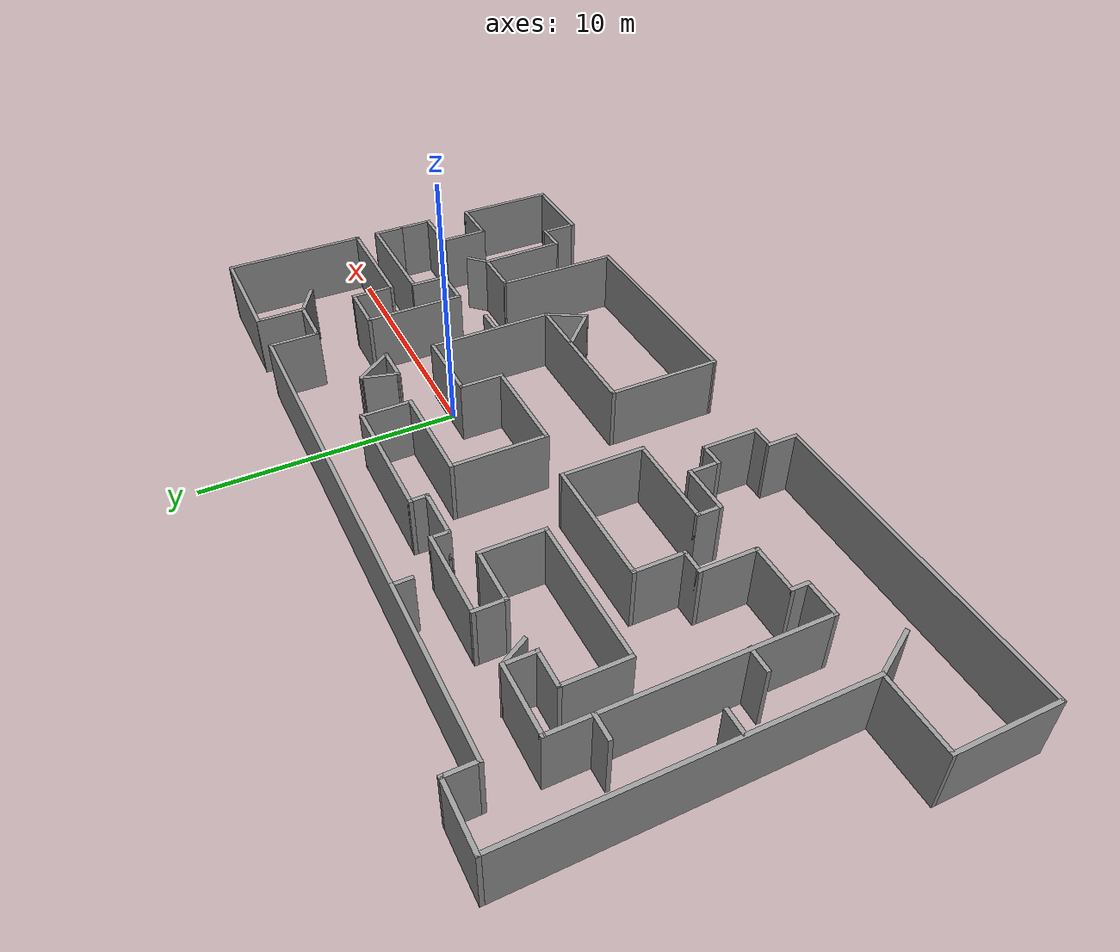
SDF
<?xml version='1.0'?>
<sdf version='1.7'>
  <model name='FBE5'>
    <pose>-5.50061 -1.24211 0 0 -0 0</pose>
    <link name='Wall_0'>
      <collision name='Wall_0_Collision'>
        <geometry>
          <box>
            <size>20.5 0.15 2.5</size>
          </box>
        </geometry>
        <pose>0 0 1.25 0 -0 0</pose>
      </collision>
      <visual name='Wall_0_Visual'>
        <pose>0 0 1.25 0 -0 0</pose>
        <geometry>
          <box>
            <size>20.5 0.15 2.5</size>
          </box>
        </geometry>
        <material>
          <script>
            <uri>file://media/materials/scripts/gazebo.material</uri>
            <name>Gazebo/Grey</name>
          </script>
          <ambient>1 1 1 1</ambient>
        </material>
        <meta>
          <layer>0</layer>
        </meta>
      </visual>
      <pose>-0.484704 7 0 0 -0 0</pose>
    </link>
    <link name='Wall_10'>
      <collision name='Wall_10_Collision'>
        <geometry>
          <box>
            <size>1 0.15 2.5</size>
          </box>
        </geometry>
        <pose>0 0 1.25 0 -0 0</pose>
      </collision>
      <visual name='Wall_10_Visual'>
        <pose>0 0 1.25 0 -0 0</pose>
        <geometry>
          <box>
            <size>1 0.15 2.5</size>
          </box>
        </geometry>
        <material>
          <script>
            <uri>file://media/materials/scripts/gazebo.material</uri>
            <name>Gazebo/Grey</name>
          </script>
          <ambient>1 1 1 1</ambient>
        </material>
        <meta>
          <layer>0</layer>
        </meta>
      </visual>
      <pose>-3.11529 -7 0 0 -0 0</pose>
    </link>
    <link name='Wall_11'>
      <collision name='Wall_11_Collision'>
        <geometry>
          <box>
            <size>2.25 0.15 2.5</size>
          </box>
        </geometry>
        <pose>0 0 1.25 0 -0 0</pose>
      </collision>
      <visual name='Wall_11_Visual'>
        <pose>0 0 1.25 0 -0 0</pose>
        <geometry>
          <box>
            <size>2.25 0.15 2.5</size>
          </box>
        </geometry>
        <material>
          <script>
            <uri>file://media/materials/scripts/gazebo.material</uri>
            <name>Gazebo/Grey</name>
          </script>
          <ambient>1 1 1 1</ambient>
        </material>
        <meta>
          <layer>0</layer>
        </meta>
      </visual>
      <pose>-2.69029 -5.95 0 0 -0 1.5708</pose>
    </link>
    <link name='Wall_12'>
      <collision name='Wall_12_Collision'>
        <geometry>
          <box>
            <size>1 0.15 2.5</size>
          </box>
        </geometry>
        <pose>0 0 1.25 0 -0 0</pose>
      </collision>
      <visual name='Wall_12_Visual'>
        <pose>0 0 1.25 0 -0 0</pose>
        <geometry>
          <box>
            <size>1 0.15 2.5</size>
          </box>
        </geometry>
        <material>
          <script>
            <uri>file://media/materials/scripts/gazebo.material</uri>
            <name>Gazebo/Grey</name>
          </script>
          <ambient>1 1 1 1</ambient>
        </material>
        <meta>
          <layer>0</layer>
        </meta>
      </visual>
      <pose>-3.11529 -4.9 0 0 -0 3.14159</pose>
    </link>
    <link name='Wall_13'>
      <collision name='Wall_13_Collision'>
        <geometry>
          <box>
            <size>1.25 0.15 2.5</size>
          </box>
        </geometry>
        <pose>0 0 1.25 0 -0 0</pose>
      </collision>
      <visual name='Wall_13_Visual'>
        <pose>0 0 1.25 0 -0 0</pose>
        <geometry>
          <box>
            <size>1.25 0.15 2.5</size>
          </box>
        </geometry>
        <material>
          <script>
            <uri>file://media/materials/scripts/gazebo.material</uri>
            <name>Gazebo/Grey</name>
          </script>
          <ambient>1 1 1 1</ambient>
        </material>
        <meta>
          <layer>0</layer>
        </meta>
      </visual>
      <pose>-3.54029 -4.35 0 0 -0 1.5708</pose>
    </link>
    <link name='Wall_14'>
      <collision name='Wall_14_Collision'>
        <geometry>
          <box>
            <size>2 0.15 2.5</size>
          </box>
        </geometry>
        <pose>0 0 1.25 0 -0 0</pose>
      </collision>
      <visual name='Wall_14_Visual'>
        <pose>0 0 1.25 0 -0 0</pose>
        <geometry>
          <box>
            <size>2 0.15 2.5</size>
          </box>
        </geometry>
        <material>
          <script>
            <uri>file://media/materials/scripts/gazebo.material</uri>
            <name>Gazebo/Grey</name>
          </script>
          <ambient>1 1 1 1</ambient>
        </material>
        <meta>
          <layer>0</layer>
        </meta>
      </visual>
      <pose>-4.4653 -3.8 0 0 -0 3.14159</pose>
    </link>
    <link name='Wall_15'>
      <collision name='Wall_15_Collision'>
        <geometry>
          <box>
            <size>1 0.15 2.5</size>
          </box>
        </geometry>
        <pose>0 0 1.25 0 -0 0</pose>
      </collision>
      <visual name='Wall_15_Visual'>
        <pose>0 0 1.25 0 -0 0</pose>
        <geometry>
          <box>
            <size>1 0.15 2.5</size>
          </box>
        </geometry>
        <material>
          <script>
            <uri>file://media/materials/scripts/gazebo.material</uri>
            <name>Gazebo/Grey</name>
          </script>
          <ambient>1 1 1 1</ambient>
        </material>
        <meta>
          <layer>0</layer>
        </meta>
      </visual>
      <pose>-5.3903 -3.375 0 0 -0 1.5708</pose>
    </link>
    <link name='Wall_16'>
      <collision name='Wall_16_Collision'>
        <geometry>
          <box>
            <size>3.75 0.15 2.5</size>
          </box>
        </geometry>
        <pose>0 0 1.25 0 -0 0</pose>
      </collision>
      <visual name='Wall_16_Visual'>
        <pose>0 0 1.25 0 -0 0</pose>
        <geometry>
          <box>
            <size>3.75 0.15 2.5</size>
          </box>
        </geometry>
        <material>
          <script>
            <uri>file://media/materials/scripts/gazebo.material</uri>
            <name>Gazebo/Grey</name>
          </script>
          <ambient>1 1 1 1</ambient>
        </material>
        <meta>
          <layer>0</layer>
        </meta>
      </visual>
      <pose>-3.59029 -2.95 0 0 -0 0</pose>
    </link>
    <link name='Wall_17'>
      <collision name='Wall_17_Collision'>
        <geometry>
          <box>
            <size>3.25 0.15 2.5</size>
          </box>
        </geometry>
        <pose>0 0 1.25 0 -0 0</pose>
      </collision>
      <visual name='Wall_17_Visual'>
        <pose>0 0 1.25 0 -0 0</pose>
        <geometry>
          <box>
            <size>3.25 0.15 2.5</size>
          </box>
        </geometry>
        <material>
          <script>
            <uri>file://media/materials/scripts/gazebo.material</uri>
            <name>Gazebo/Grey</name>
          </script>
          <ambient>1 1 1 1</ambient>
        </material>
        <meta>
          <layer>0</layer>
        </meta>
      </visual>
      <pose>-1.79029 -1.4 0 0 -0 1.5708</pose>
    </link>
    <link name='Wall_18'>
      <collision name='Wall_18_Collision'>
        <geometry>
          <box>
            <size>5 0.15 2.5</size>
          </box>
        </geometry>
        <pose>0 0 1.25 0 -0 0</pose>
      </collision>
      <visual name='Wall_18_Visual'>
        <pose>0 0 1.25 0 -0 0</pose>
        <geometry>
          <box>
            <size>5 0.15 2.5</size>
          </box>
        </geometry>
        <material>
          <script>
            <uri>file://media/materials/scripts/gazebo.material</uri>
            <name>Gazebo/Grey</name>
          </script>
          <ambient>1 1 1 1</ambient>
        </material>
        <meta>
          <layer>0</layer>
        </meta>
      </visual>
      <pose>-4.2153 0.15 0 0 -0 3.14159</pose>
    </link>
    <link name='Wall_19'>
      <collision name='Wall_19_Collision'>
        <geometry>
          <box>
            <size>2 0.15 2.5</size>
          </box>
        </geometry>
        <pose>0 0 1.25 0 -0 0</pose>
      </collision>
      <visual name='Wall_19_Visual'>
        <pose>0 0 1.25 0 -0 0</pose>
        <geometry>
          <box>
            <size>2 0.15 2.5</size>
          </box>
        </geometry>
        <material>
          <script>
            <uri>file://media/materials/scripts/gazebo.material</uri>
            <name>Gazebo/Grey</name>
          </script>
          <ambient>1 1 1 1</ambient>
        </material>
        <meta>
          <layer>0</layer>
        </meta>
      </visual>
      <pose>-6.6403 -0.775 0 0 -0 -1.5708</pose>
    </link>
    <link name='Wall_2'>
      <collision name='Wall_2_Collision'>
        <geometry>
          <box>
            <size>1.25 0.15 2.5</size>
          </box>
        </geometry>
        <pose>0 0 1.25 0 -0 0</pose>
      </collision>
      <visual name='Wall_2_Visual'>
        <pose>0 0 1.25 0 -0 0</pose>
        <geometry>
          <box>
            <size>1.25 0.15 2.5</size>
          </box>
        </geometry>
        <material>
          <script>
            <uri>file://media/materials/scripts/gazebo.material</uri>
            <name>Gazebo/Grey</name>
          </script>
          <ambient>1 1 1 1</ambient>
        </material>
        <meta>
          <layer>0</layer>
        </meta>
      </visual>
      <pose>-10.6597 7.55 0 0 -0 1.5708</pose>
    </link>
    <link name='Wall_20'>
      <collision name='Wall_20_Collision'>
        <geometry>
          <box>
            <size>1 0.15 2.5</size>
          </box>
        </geometry>
        <pose>0 0 1.25 0 -0 0</pose>
      </collision>
      <visual name='Wall_20_Visual'>
        <pose>0 0 1.25 0 -0 0</pose>
        <geometry>
          <box>
            <size>1 0.15 2.5</size>
          </box>
        </geometry>
        <material>
          <script>
            <uri>file://media/materials/scripts/gazebo.material</uri>
            <name>Gazebo/Grey</name>
          </script>
          <ambient>1 1 1 1</ambient>
        </material>
        <meta>
          <layer>0</layer>
        </meta>
      </visual>
      <pose>-7.06529 -1.7 0 0 -0 3.14159</pose>
    </link>
    <link name='Wall_21'>
      <collision name='Wall_21_Collision'>
        <geometry>
          <box>
            <size>2.25 0.15 2.5</size>
          </box>
        </geometry>
        <pose>0 0 1.25 0 -0 0</pose>
      </collision>
      <visual name='Wall_21_Visual'>
        <pose>0 0 1.25 0 -0 0</pose>
        <geometry>
          <box>
            <size>2.25 0.15 2.5</size>
          </box>
        </geometry>
        <material>
          <script>
            <uri>file://media/materials/scripts/gazebo.material</uri>
            <name>Gazebo/Grey</name>
          </script>
          <ambient>1 1 1 1</ambient>
        </material>
        <meta>
          <layer>0</layer>
        </meta>
      </visual>
      <pose>-7.49029 -2.75 0 0 -0 -1.5708</pose>
    </link>
    <link name='Wall_22'>
      <collision name='Wall_22_Collision'>
        <geometry>
          <box>
            <size>2 0.15 2.5</size>
          </box>
        </geometry>
        <pose>0 0 1.25 0 -0 0</pose>
      </collision>
      <visual name='Wall_22_Visual'>
        <pose>0 0 1.25 0 -0 0</pose>
        <geometry>
          <box>
            <size>2 0.15 2.5</size>
          </box>
        </geometry>
        <material>
          <script>
            <uri>file://media/materials/scripts/gazebo.material</uri>
            <name>Gazebo/Grey</name>
          </script>
          <ambient>1 1 1 1</ambient>
        </material>
        <meta>
          <layer>0</layer>
        </meta>
      </visual>
      <pose>-8.4153 -3.8 0 0 -0 3.14159</pose>
    </link>
    <link name='Wall_23'>
      <collision name='Wall_23_Collision'>
        <geometry>
          <box>
            <size>0.75 0.15 2.5</size>
          </box>
        </geometry>
        <pose>0 0 1.25 0 -0 0</pose>
      </collision>
      <visual name='Wall_23_Visual'>
        <pose>0 0 1.25 0 -0 0</pose>
        <geometry>
          <box>
            <size>0.75 0.15 2.5</size>
          </box>
        </geometry>
        <material>
          <script>
            <uri>file://media/materials/scripts/gazebo.material</uri>
            <name>Gazebo/Grey</name>
          </script>
          <ambient>1 1 1 1</ambient>
        </material>
        <meta>
          <layer>0</layer>
        </meta>
      </visual>
      <pose>-9.34029 -4.1 0 0 -0 -1.5708</pose>
    </link>
    <link name='Wall_24'>
      <collision name='Wall_24_Collision'>
        <geometry>
          <box>
            <size>1.5 0.15 2.5</size>
          </box>
        </geometry>
        <pose>0 0 1.25 0 -0 0</pose>
      </collision>
      <visual name='Wall_24_Visual'>
        <pose>0 0 1.25 0 -0 0</pose>
        <geometry>
          <box>
            <size>1.5 0.15 2.5</size>
          </box>
        </geometry>
        <material>
          <script>
            <uri>file://media/materials/scripts/gazebo.material</uri>
            <name>Gazebo/Grey</name>
          </script>
          <ambient>1 1 1 1</ambient>
        </material>
        <meta>
          <layer>0</layer>
        </meta>
      </visual>
      <pose>-10.0153 -4.4 0 0 -0 3.14159</pose>
    </link>
    <link name='Wall_25'>
      <collision name='Wall_25_Collision'>
        <geometry>
          <box>
            <size>9.75 0.15 2.5</size>
          </box>
        </geometry>
        <pose>0 0 1.25 0 -0 0</pose>
      </collision>
      <visual name='Wall_25_Visual'>
        <pose>0 0 1.25 0 -0 0</pose>
        <geometry>
          <box>
            <size>9.75 0.15 2.5</size>
          </box>
        </geometry>
        <material>
          <script>
            <uri>file://media/materials/scripts/gazebo.material</uri>
            <name>Gazebo/Grey</name>
          </script>
          <ambient>1 1 1 1</ambient>
        </material>
        <meta>
          <layer>0</layer>
        </meta>
      </visual>
      <pose>-10.6903 0.4 0 0 -0 1.5708</pose>
    </link>
    <link name='Wall_26'>
      <collision name='Wall_26_Collision'>
        <geometry>
          <box>
            <size>2.75 0.15 2.5</size>
          </box>
        </geometry>
        <pose>0 0 1.25 0 -0 0</pose>
      </collision>
      <visual name='Wall_26_Visual'>
        <pose>0 0 1.25 0 -0 0</pose>
        <geometry>
          <box>
            <size>2.75 0.15 2.5</size>
          </box>
        </geometry>
        <material>
          <script>
            <uri>file://media/materials/scripts/gazebo.material</uri>
            <name>Gazebo/Grey</name>
          </script>
          <ambient>1 1 1 1</ambient>
        </material>
        <meta>
          <layer>0</layer>
        </meta>
      </visual>
      <pose>-9.3903 5.2 0 0 -0 0</pose>
    </link>
    <link name='Wall_27'>
      <collision name='Wall_27_Collision'>
        <geometry>
          <box>
            <size>1.25 0.15 2.5</size>
          </box>
        </geometry>
        <pose>0 0 1.25 0 -0 0</pose>
      </collision>
      <visual name='Wall_27_Visual'>
        <pose>0 0 1.25 0 -0 0</pose>
        <geometry>
          <box>
            <size>1.25 0.15 2.5</size>
          </box>
        </geometry>
        <material>
          <script>
            <uri>file://media/materials/scripts/gazebo.material</uri>
            <name>Gazebo/Grey</name>
          </script>
          <ambient>1 1 1 1</ambient>
        </material>
        <meta>
          <layer>0</layer>
        </meta>
      </visual>
      <pose>-8.09029 4.65 0 0 -0 -1.5708</pose>
    </link>
    <link name='Wall_28'>
      <collision name='Wall_28_Collision'>
        <geometry>
          <box>
            <size>1.5 0.15 2.5</size>
          </box>
        </geometry>
        <pose>0 0 1.25 0 -0 0</pose>
      </collision>
      <visual name='Wall_28_Visual'>
        <pose>0 0 1.25 0 -0 0</pose>
        <geometry>
          <box>
            <size>1.5 0.15 2.5</size>
          </box>
        </geometry>
        <material>
          <script>
            <uri>file://media/materials/scripts/gazebo.material</uri>
            <name>Gazebo/Grey</name>
          </script>
          <ambient>1 1 1 1</ambient>
        </material>
        <meta>
          <layer>0</layer>
        </meta>
      </visual>
      <pose>-8.7653 4.1 0 0 -0 3.14159</pose>
    </link>
    <link name='Wall_29'>
      <collision name='Wall_29_Collision'>
        <geometry>
          <box>
            <size>2.5 0.15 2.5</size>
          </box>
        </geometry>
        <pose>0 0 1.25 0 -0 0</pose>
      </collision>
      <visual name='Wall_29_Visual'>
        <pose>0 0 1.25 0 -0 0</pose>
        <geometry>
          <box>
            <size>2.5 0.15 2.5</size>
          </box>
        </geometry>
        <material>
          <script>
            <uri>file://media/materials/scripts/gazebo.material</uri>
            <name>Gazebo/Grey</name>
          </script>
          <ambient>1 1 1 1</ambient>
        </material>
        <meta>
          <layer>0</layer>
        </meta>
      </visual>
      <pose>-9.4403 2.925 0 0 -0 -1.5708</pose>
    </link>
    <link name='Wall_3'>
      <collision name='Wall_3_Collision'>
        <geometry>
          <box>
            <size>2.53059 0.15 2.5</size>
          </box>
        </geometry>
        <pose>0 0 1.25 0 -0 0</pose>
      </collision>
      <visual name='Wall_3_Visual'>
        <pose>0 0 1.25 0 -0 0</pose>
        <geometry>
          <box>
            <size>2.53059 0.15 2.5</size>
          </box>
        </geometry>
        <material>
          <script>
            <uri>file://media/materials/scripts/gazebo.material</uri>
            <name>Gazebo/Grey</name>
          </script>
          <ambient>1 1 1 1</ambient>
        </material>
        <meta>
          <layer>0</layer>
        </meta>
      </visual>
      <pose>-11.85 8.1 0 0 -0 3.14159</pose>
    </link>
    <link name='Wall_30'>
      <collision name='Wall_30_Collision'>
        <geometry>
          <box>
            <size>5.75 0.15 2.5</size>
          </box>
        </geometry>
        <pose>0 0 1.25 0 -0 0</pose>
      </collision>
      <visual name='Wall_30_Visual'>
        <pose>0 0 1.25 0 -0 0</pose>
        <geometry>
          <box>
            <size>5.75 0.15 2.5</size>
          </box>
        </geometry>
        <material>
          <script>
            <uri>file://media/materials/scripts/gazebo.material</uri>
            <name>Gazebo/Grey</name>
          </script>
          <ambient>1 1 1 1</ambient>
        </material>
        <meta>
          <layer>0</layer>
        </meta>
      </visual>
      <pose>-6.6403 1.75 0 0 -0 0</pose>
    </link>
    <link name='Wall_31'>
      <collision name='Wall_31_Collision'>
        <geometry>
          <box>
            <size>2.5 0.15 2.5</size>
          </box>
        </geometry>
        <pose>0 0 1.25 0 -0 0</pose>
      </collision>
      <visual name='Wall_31_Visual'>
        <pose>0 0 1.25 0 -0 0</pose>
        <geometry>
          <box>
            <size>2.5 0.15 2.5</size>
          </box>
        </geometry>
        <material>
          <script>
            <uri>file://media/materials/scripts/gazebo.material</uri>
            <name>Gazebo/Grey</name>
          </script>
          <ambient>1 1 1 1</ambient>
        </material>
        <meta>
          <layer>0</layer>
        </meta>
      </visual>
      <pose>-3.84029 2.925 0 0 -0 1.5708</pose>
    </link>
    <link name='Wall_32'>
      <collision name='Wall_32_Collision'>
        <geometry>
          <box>
            <size>2.25 0.15 2.5</size>
          </box>
        </geometry>
        <pose>0 0 1.25 0 -0 0</pose>
      </collision>
      <visual name='Wall_32_Visual'>
        <pose>0 0 1.25 0 -0 0</pose>
        <geometry>
          <box>
            <size>2.25 0.15 2.5</size>
          </box>
        </geometry>
        <material>
          <script>
            <uri>file://media/materials/scripts/gazebo.material</uri>
            <name>Gazebo/Grey</name>
          </script>
          <ambient>1 1 1 1</ambient>
        </material>
        <meta>
          <layer>0</layer>
        </meta>
      </visual>
      <pose>-4.8903 4.1 0 0 -0 3.14159</pose>
    </link>
    <link name='Wall_33'>
      <collision name='Wall_33_Collision'>
        <geometry>
          <box>
            <size>1.25 0.15 2.5</size>
          </box>
        </geometry>
        <pose>0 0 1.25 0 -0 0</pose>
      </collision>
      <visual name='Wall_33_Visual'>
        <pose>0 0 1.25 0 -0 0</pose>
        <geometry>
          <box>
            <size>1.25 0.15 2.5</size>
          </box>
        </geometry>
        <material>
          <script>
            <uri>file://media/materials/scripts/gazebo.material</uri>
            <name>Gazebo/Grey</name>
          </script>
          <ambient>1 1 1 1</ambient>
        </material>
        <meta>
          <layer>0</layer>
        </meta>
      </visual>
      <pose>-5.94029 4.65 0 0 -0 1.5708</pose>
    </link>
    <link name='Wall_34'>
      <collision name='Wall_34_Collision'>
        <geometry>
          <box>
            <size>3.5 0.15 2.5</size>
          </box>
        </geometry>
        <pose>0 0 1.25 0 -0 0</pose>
      </collision>
      <visual name='Wall_34_Visual'>
        <pose>0 0 1.25 0 -0 0</pose>
        <geometry>
          <box>
            <size>3.5 0.15 2.5</size>
          </box>
        </geometry>
        <material>
          <script>
            <uri>file://media/materials/scripts/gazebo.material</uri>
            <name>Gazebo/Grey</name>
          </script>
          <ambient>1 1 1 1</ambient>
        </material>
        <meta>
          <layer>0</layer>
        </meta>
      </visual>
      <pose>-4.2653 5.2 0 0 -0 0</pose>
    </link>
    <link name='Wall_35'>
      <collision name='Wall_35_Collision'>
        <geometry>
          <box>
            <size>0.75 0.15 2.5</size>
          </box>
        </geometry>
        <pose>0 0 1.25 0 -0 0</pose>
      </collision>
      <visual name='Wall_35_Visual'>
        <pose>0 0 1.25 0 -0 0</pose>
        <geometry>
          <box>
            <size>0.75 0.15 2.5</size>
          </box>
        </geometry>
        <material>
          <script>
            <uri>file://media/materials/scripts/gazebo.material</uri>
            <name>Gazebo/Grey</name>
          </script>
          <ambient>1 1 1 1</ambient>
        </material>
        <meta>
          <layer>0</layer>
        </meta>
      </visual>
      <pose>-2.59029 4.9 0 0 -0 -1.5708</pose>
    </link>
    <link name='Wall_36'>
      <collision name='Wall_36_Collision'>
        <geometry>
          <box>
            <size>2 0.15 2.5</size>
          </box>
        </geometry>
        <pose>0 0 1.25 0 -0 0</pose>
      </collision>
      <visual name='Wall_36_Visual'>
        <pose>0 0 1.25 0 -0 0</pose>
        <geometry>
          <box>
            <size>2 0.15 2.5</size>
          </box>
        </geometry>
        <material>
          <script>
            <uri>file://media/materials/scripts/gazebo.material</uri>
            <name>Gazebo/Grey</name>
          </script>
          <ambient>1 1 1 1</ambient>
        </material>
        <meta>
          <layer>0</layer>
        </meta>
      </visual>
      <pose>-1.66529 4.6 0 0 -0 0</pose>
    </link>
    <link name='Wall_37'>
      <collision name='Wall_37_Collision'>
        <geometry>
          <box>
            <size>0.75 0.15 2.5</size>
          </box>
        </geometry>
        <pose>0 0 1.25 0 -0 0</pose>
      </collision>
      <visual name='Wall_37_Visual'>
        <pose>0 0 1.25 0 -0 0</pose>
        <geometry>
          <box>
            <size>0.75 0.15 2.5</size>
          </box>
        </geometry>
        <material>
          <script>
            <uri>file://media/materials/scripts/gazebo.material</uri>
            <name>Gazebo/Grey</name>
          </script>
          <ambient>1 1 1 1</ambient>
        </material>
        <meta>
          <layer>0</layer>
        </meta>
      </visual>
      <pose>-0.740295 4.9 0 0 -0 1.5708</pose>
    </link>
    <link name='Wall_38'>
      <collision name='Wall_38_Collision'>
        <geometry>
          <box>
            <size>5 0.15 2.5</size>
          </box>
        </geometry>
        <pose>0 0 1.25 0 -0 0</pose>
      </collision>
      <visual name='Wall_38_Visual'>
        <pose>0 0 1.25 0 -0 0</pose>
        <geometry>
          <box>
            <size>5 0.15 2.5</size>
          </box>
        </geometry>
        <material>
          <script>
            <uri>file://media/materials/scripts/gazebo.material</uri>
            <name>Gazebo/Grey</name>
          </script>
          <ambient>1 1 1 1</ambient>
        </material>
        <meta>
          <layer>0</layer>
        </meta>
      </visual>
      <pose>1.6847 5.2 0 0 -0 0</pose>
    </link>
    <link name='Wall_39'>
      <collision name='Wall_39_Collision'>
        <geometry>
          <box>
            <size>2 0.15 2.5</size>
          </box>
        </geometry>
        <pose>0 0 1.25 0 -0 0</pose>
      </collision>
      <visual name='Wall_39_Visual'>
        <pose>0 0 1.25 0 -0 0</pose>
        <geometry>
          <box>
            <size>2 0.15 2.5</size>
          </box>
        </geometry>
        <material>
          <script>
            <uri>file://media/materials/scripts/gazebo.material</uri>
            <name>Gazebo/Grey</name>
          </script>
          <ambient>1 1 1 1</ambient>
        </material>
        <meta>
          <layer>0</layer>
        </meta>
      </visual>
      <pose>4.1097 4.275 0 0 -0 -1.5708</pose>
    </link>
    <link name='Wall_4'>
      <collision name='Wall_4_Collision'>
        <geometry>
          <box>
            <size>12.5 0.15 2.5</size>
          </box>
        </geometry>
        <pose>0 0 1.25 0 -0 0</pose>
      </collision>
      <visual name='Wall_4_Visual'>
        <pose>0 0 1.25 0 -0 0</pose>
        <geometry>
          <box>
            <size>12.5 0.15 2.5</size>
          </box>
        </geometry>
        <material>
          <script>
            <uri>file://media/materials/scripts/gazebo.material</uri>
            <name>Gazebo/Grey</name>
          </script>
          <ambient>1 1 1 1</ambient>
        </material>
        <meta>
          <layer>0</layer>
        </meta>
      </visual>
      <pose>-13.0403 1.925 0 0 -0 -1.5708</pose>
    </link>
    <link name='Wall_40'>
      <collision name='Wall_40_Collision'>
        <geometry>
          <box>
            <size>4 0.15 2.5</size>
          </box>
        </geometry>
        <pose>0 0 1.25 0 -0 0</pose>
      </collision>
      <visual name='Wall_40_Visual'>
        <pose>0 0 1.25 0 -0 0</pose>
        <geometry>
          <box>
            <size>4 0.15 2.5</size>
          </box>
        </geometry>
        <material>
          <script>
            <uri>file://media/materials/scripts/gazebo.material</uri>
            <name>Gazebo/Grey</name>
          </script>
          <ambient>1 1 1 1</ambient>
        </material>
        <meta>
          <layer>0</layer>
        </meta>
      </visual>
      <pose>2.18471 3.35 0 0 -0 3.14159</pose>
    </link>
    <link name='Wall_41'>
      <collision name='Wall_41_Collision'>
        <geometry>
          <box>
            <size>3.75 0.15 2.5</size>
          </box>
        </geometry>
        <pose>0 0 1.25 0 -0 0</pose>
      </collision>
      <visual name='Wall_41_Visual'>
        <pose>0 0 1.25 0 -0 0</pose>
        <geometry>
          <box>
            <size>3.75 0.15 2.5</size>
          </box>
        </geometry>
        <material>
          <script>
            <uri>file://media/materials/scripts/gazebo.material</uri>
            <name>Gazebo/Grey</name>
          </script>
          <ambient>1 1 1 1</ambient>
        </material>
        <meta>
          <layer>0</layer>
        </meta>
      </visual>
      <pose>0.259705 1.55 0 0 -0 -1.5708</pose>
    </link>
    <link name='Wall_42'>
      <collision name='Wall_42_Collision'>
        <geometry>
          <box>
            <size>4 0.15 2.5</size>
          </box>
        </geometry>
        <pose>0 0 1.25 0 -0 0</pose>
      </collision>
      <visual name='Wall_42_Visual'>
        <pose>0 0 1.25 0 -0 0</pose>
        <geometry>
          <box>
            <size>4 0.15 2.5</size>
          </box>
        </geometry>
        <material>
          <script>
            <uri>file://media/materials/scripts/gazebo.material</uri>
            <name>Gazebo/Grey</name>
          </script>
          <ambient>1 1 1 1</ambient>
        </material>
        <meta>
          <layer>0</layer>
        </meta>
      </visual>
      <pose>2.18471 -0.25 0 0 -0 0</pose>
    </link>
    <link name='Wall_43'>
      <collision name='Wall_43_Collision'>
        <geometry>
          <box>
            <size>1.75 0.15 2.5</size>
          </box>
        </geometry>
        <pose>0 0 1.25 0 -0 0</pose>
      </collision>
      <visual name='Wall_43_Visual'>
        <pose>0 0 1.25 0 -0 0</pose>
        <geometry>
          <box>
            <size>1.75 0.15 2.5</size>
          </box>
        </geometry>
        <material>
          <script>
            <uri>file://media/materials/scripts/gazebo.material</uri>
            <name>Gazebo/Grey</name>
          </script>
          <ambient>1 1 1 1</ambient>
        </material>
        <meta>
          <layer>0</layer>
        </meta>
      </visual>
      <pose>4.1097 0.55 0 0 -0 1.5708</pose>
    </link>
    <link name='Wall_44'>
      <collision name='Wall_44_Collision'>
        <geometry>
          <box>
            <size>3 0.15 2.5</size>
          </box>
        </geometry>
        <pose>0 0 1.25 0 -0 0</pose>
      </collision>
      <visual name='Wall_44_Visual'>
        <pose>0 0 1.25 0 -0 0</pose>
        <geometry>
          <box>
            <size>3 0.15 2.5</size>
          </box>
        </geometry>
        <material>
          <script>
            <uri>file://media/materials/scripts/gazebo.material</uri>
            <name>Gazebo/Grey</name>
          </script>
          <ambient>1 1 1 1</ambient>
        </material>
        <meta>
          <layer>0</layer>
        </meta>
      </visual>
      <pose>5.5347 1.35 0 0 -0 0</pose>
    </link>
    <link name='Wall_45'>
      <collision name='Wall_45_Collision'>
        <geometry>
          <box>
            <size>5 0.15 2.5</size>
          </box>
        </geometry>
        <pose>0 0 1.25 0 -0 0</pose>
      </collision>
      <visual name='Wall_45_Visual'>
        <pose>0 0 1.25 0 -0 0</pose>
        <geometry>
          <box>
            <size>5 0.15 2.5</size>
          </box>
        </geometry>
        <material>
          <script>
            <uri>file://media/materials/scripts/gazebo.material</uri>
            <name>Gazebo/Grey</name>
          </script>
          <ambient>1 1 1 1</ambient>
        </material>
        <meta>
          <layer>0</layer>
        </meta>
      </visual>
      <pose>6.9597 -1.075 0 0 -0 -1.5708</pose>
    </link>
    <link name='Wall_46'>
      <collision name='Wall_46_Collision'>
        <geometry>
          <box>
            <size>5.75 0.15 2.5</size>
          </box>
        </geometry>
        <pose>0 0 1.25 0 -0 0</pose>
      </collision>
      <visual name='Wall_46_Visual'>
        <pose>0 0 1.25 0 -0 0</pose>
        <geometry>
          <box>
            <size>5.75 0.15 2.5</size>
          </box>
        </geometry>
        <material>
          <script>
            <uri>file://media/materials/scripts/gazebo.material</uri>
            <name>Gazebo/Grey</name>
          </script>
          <ambient>1 1 1 1</ambient>
        </material>
        <meta>
          <layer>0</layer>
        </meta>
      </visual>
      <pose>4.1597 -3.5 0 0 -0 3.14159</pose>
    </link>
    <link name='Wall_47'>
      <collision name='Wall_47_Collision'>
        <geometry>
          <box>
            <size>4.5 0.15 2.5</size>
          </box>
        </geometry>
        <pose>0 0 1.25 0 -0 0</pose>
      </collision>
      <visual name='Wall_47_Visual'>
        <pose>0 0 1.25 0 -0 0</pose>
        <geometry>
          <box>
            <size>4.5 0.15 2.5</size>
          </box>
        </geometry>
        <material>
          <script>
            <uri>file://media/materials/scripts/gazebo.material</uri>
            <name>Gazebo/Grey</name>
          </script>
          <ambient>1 1 1 1</ambient>
        </material>
        <meta>
          <layer>0</layer>
        </meta>
      </visual>
      <pose>1.3597 -5.675 0 0 -0 -1.5708</pose>
    </link>
    <link name='Wall_48'>
      <collision name='Wall_48_Collision'>
        <geometry>
          <box>
            <size>8.52145 0.15 2.5</size>
          </box>
        </geometry>
        <pose>0 0 1.25 0 -0 0</pose>
      </collision>
      <visual name='Wall_48_Visual'>
        <pose>0 0 1.25 0 -0 0</pose>
        <geometry>
          <box>
            <size>8.52145 0.15 2.5</size>
          </box>
        </geometry>
        <material>
          <script>
            <uri>file://media/materials/scripts/gazebo.material</uri>
            <name>Gazebo/Grey</name>
          </script>
          <ambient>1 1 1 1</ambient>
        </material>
        <meta>
          <layer>0</layer>
        </meta>
      </visual>
      <pose>5.54536 -7.825 0 0 -0 0.005973</pose>
    </link>
    <link name='Wall_5'>
      <collision name='Wall_5_Collision'>
        <geometry>
          <box>
            <size>3 0.15 2.5</size>
          </box>
        </geometry>
        <pose>0 0 1.25 0 -0 0</pose>
      </collision>
      <visual name='Wall_5_Visual'>
        <pose>0 0 1.25 0 -0 0</pose>
        <geometry>
          <box>
            <size>3 0.15 2.5</size>
          </box>
        </geometry>
        <material>
          <script>
            <uri>file://media/materials/scripts/gazebo.material</uri>
            <name>Gazebo/Grey</name>
          </script>
          <ambient>1 1 1 1</ambient>
        </material>
        <meta>
          <layer>0</layer>
        </meta>
      </visual>
      <pose>-14.4653 -4.25 0 0 -0 3.14159</pose>
    </link>
    <link name='Wall_51'>
      <collision name='Wall_51_Collision'>
        <geometry>
          <box>
            <size>2 0.15 2.5</size>
          </box>
        </geometry>
        <pose>0 0 1.25 0 -0 0</pose>
      </collision>
      <visual name='Wall_51_Visual'>
        <pose>0 0 1.25 0 -0 0</pose>
        <geometry>
          <box>
            <size>2 0.15 2.5</size>
          </box>
        </geometry>
        <material>
          <script>
            <uri>file://media/materials/scripts/gazebo.material</uri>
            <name>Gazebo/Grey</name>
          </script>
          <ambient>1 1 1 1</ambient>
        </material>
        <meta>
          <layer>0</layer>
        </meta>
      </visual>
      <pose>9.6903 6.075 0 0 -0 -1.5708</pose>
    </link>
    <link name='Wall_52'>
      <collision name='Wall_52_Collision'>
        <geometry>
          <box>
            <size>2 0.15 2.5</size>
          </box>
        </geometry>
        <pose>0 0 1.25 0 -0 0</pose>
      </collision>
      <visual name='Wall_52_Visual'>
        <pose>0 0 1.25 0 -0 0</pose>
        <geometry>
          <box>
            <size>2 0.15 2.5</size>
          </box>
        </geometry>
        <material>
          <script>
            <uri>file://media/materials/scripts/gazebo.material</uri>
            <name>Gazebo/Grey</name>
          </script>
          <ambient>1 1 1 1</ambient>
        </material>
        <meta>
          <layer>0</layer>
        </meta>
      </visual>
      <pose>10.6153 5.15 0 0 -0 0</pose>
    </link>
    <link name='Wall_53'>
      <collision name='Wall_53_Collision'>
        <geometry>
          <box>
            <size>2 0.15 2.5</size>
          </box>
        </geometry>
        <pose>0 0 1.25 0 -0 0</pose>
      </collision>
      <visual name='Wall_53_Visual'>
        <pose>0 0 1.25 0 -0 0</pose>
        <geometry>
          <box>
            <size>2 0.15 2.5</size>
          </box>
        </geometry>
        <material>
          <script>
            <uri>file://media/materials/scripts/gazebo.material</uri>
            <name>Gazebo/Grey</name>
          </script>
          <ambient>1 1 1 1</ambient>
        </material>
        <meta>
          <layer>0</layer>
        </meta>
      </visual>
      <pose>11.5403 6.075 0 0 -0 1.5708</pose>
    </link>
    <link name='Wall_54'>
      <collision name='Wall_54_Collision'>
        <geometry>
          <box>
            <size>4.5 0.15 2.5</size>
          </box>
        </geometry>
        <pose>0 0 1.25 0 -0 0</pose>
      </collision>
      <visual name='Wall_54_Visual'>
        <pose>0 0 1.25 0 -0 0</pose>
        <geometry>
          <box>
            <size>4.5 0.15 2.5</size>
          </box>
        </geometry>
        <material>
          <script>
            <uri>file://media/materials/scripts/gazebo.material</uri>
            <name>Gazebo/Grey</name>
          </script>
          <ambient>1 1 1 1</ambient>
        </material>
        <meta>
          <layer>0</layer>
        </meta>
      </visual>
      <pose>13.7153 7 0 0 -0 0</pose>
    </link>
    <link name='Wall_55'>
      <collision name='Wall_55_Collision'>
        <geometry>
          <box>
            <size>5.75 0.15 2.5</size>
          </box>
        </geometry>
        <pose>0 0 1.25 0 -0 0</pose>
      </collision>
      <visual name='Wall_55_Visual'>
        <pose>0 0 1.25 0 -0 0</pose>
        <geometry>
          <box>
            <size>5.75 0.15 2.5</size>
          </box>
        </geometry>
        <material>
          <script>
            <uri>file://media/materials/scripts/gazebo.material</uri>
            <name>Gazebo/Grey</name>
          </script>
          <ambient>1 1 1 1</ambient>
        </material>
        <meta>
          <layer>0</layer>
        </meta>
      </visual>
      <pose>15.8903 4.2 0 0 -0 -1.5708</pose>
    </link>
    <link name='Wall_56'>
      <collision name='Wall_56_Collision'>
        <geometry>
          <box>
            <size>4.5 0.15 2.5</size>
          </box>
        </geometry>
        <pose>0 0 1.25 0 -0 0</pose>
      </collision>
      <visual name='Wall_56_Visual'>
        <pose>0 0 1.25 0 -0 0</pose>
        <geometry>
          <box>
            <size>4.5 0.15 2.5</size>
          </box>
        </geometry>
        <material>
          <script>
            <uri>file://media/materials/scripts/gazebo.material</uri>
            <name>Gazebo/Grey</name>
          </script>
          <ambient>1 1 1 1</ambient>
        </material>
        <meta>
          <layer>0</layer>
        </meta>
      </visual>
      <pose>13.7153 1.4 0 0 -0 3.14159</pose>
    </link>
    <link name='Wall_57'>
      <collision name='Wall_57_Collision'>
        <geometry>
          <box>
            <size>1.75 0.15 2.5</size>
          </box>
        </geometry>
        <pose>0 0 1.25 0 -0 0</pose>
      </collision>
      <visual name='Wall_57_Visual'>
        <pose>0 0 1.25 0 -0 0</pose>
        <geometry>
          <box>
            <size>1.75 0.15 2.5</size>
          </box>
        </geometry>
        <material>
          <script>
            <uri>file://media/materials/scripts/gazebo.material</uri>
            <name>Gazebo/Grey</name>
          </script>
          <ambient>1 1 1 1</ambient>
        </material>
        <meta>
          <layer>0</layer>
        </meta>
      </visual>
      <pose>11.5403 2.2 0 0 -0 1.5708</pose>
    </link>
    <link name='Wall_58'>
      <collision name='Wall_58_Collision'>
        <geometry>
          <box>
            <size>2 0.15 2.5</size>
          </box>
        </geometry>
        <pose>0 0 1.25 0 -0 0</pose>
      </collision>
      <visual name='Wall_58_Visual'>
        <pose>0 0 1.25 0 -0 0</pose>
        <geometry>
          <box>
            <size>2 0.15 2.5</size>
          </box>
        </geometry>
        <material>
          <script>
            <uri>file://media/materials/scripts/gazebo.material</uri>
            <name>Gazebo/Grey</name>
          </script>
          <ambient>1 1 1 1</ambient>
        </material>
        <meta>
          <layer>0</layer>
        </meta>
      </visual>
      <pose>10.6153 3 0 0 -0 3.14159</pose>
    </link>
    <link name='Wall_59'>
      <collision name='Wall_59_Collision'>
        <geometry>
          <box>
            <size>4 0.15 2.5</size>
          </box>
        </geometry>
        <pose>0 0 1.25 0 -0 0</pose>
      </collision>
      <visual name='Wall_59_Visual'>
        <pose>0 0 1.25 0 -0 0</pose>
        <geometry>
          <box>
            <size>4 0.15 2.5</size>
          </box>
        </geometry>
        <material>
          <script>
            <uri>file://media/materials/scripts/gazebo.material</uri>
            <name>Gazebo/Grey</name>
          </script>
          <ambient>1 1 1 1</ambient>
        </material>
        <meta>
          <layer>0</layer>
        </meta>
      </visual>
      <pose>9.6903 1.075 0 0 -0 -1.5708</pose>
    </link>
    <link name='Wall_60'>
      <collision name='Wall_60_Collision'>
        <geometry>
          <box>
            <size>1.75 0.15 2.5</size>
          </box>
        </geometry>
        <pose>0 0 1.25 0 -0 0</pose>
      </collision>
      <visual name='Wall_60_Visual'>
        <pose>0 0 1.25 0 -0 0</pose>
        <geometry>
          <box>
            <size>1.75 0.15 2.5</size>
          </box>
        </geometry>
        <material>
          <script>
            <uri>file://media/materials/scripts/gazebo.material</uri>
            <name>Gazebo/Grey</name>
          </script>
          <ambient>1 1 1 1</ambient>
        </material>
        <meta>
          <layer>0</layer>
        </meta>
      </visual>
      <pose>10.4903 -0.85 0 0 -0 0</pose>
    </link>
    <link name='Wall_61'>
      <collision name='Wall_61_Collision'>
        <geometry>
          <box>
            <size>1.5 0.15 2.5</size>
          </box>
        </geometry>
        <pose>0 0 1.25 0 -0 0</pose>
      </collision>
      <visual name='Wall_61_Visual'>
        <pose>0 0 1.25 0 -0 0</pose>
        <geometry>
          <box>
            <size>1.5 0.15 2.5</size>
          </box>
        </geometry>
        <material>
          <script>
            <uri>file://media/materials/scripts/gazebo.material</uri>
            <name>Gazebo/Grey</name>
          </script>
          <ambient>1 1 1 1</ambient>
        </material>
        <meta>
          <layer>0</layer>
        </meta>
      </visual>
      <pose>11.2903 -0.175 0 0 -0 1.5708</pose>
    </link>
    <link name='Wall_62'>
      <collision name='Wall_62_Collision'>
        <geometry>
          <box>
            <size>4.75 0.15 2.5</size>
          </box>
        </geometry>
        <pose>0 0 1.25 0 -0 0</pose>
      </collision>
      <visual name='Wall_62_Visual'>
        <pose>0 0 1.25 0 -0 0</pose>
        <geometry>
          <box>
            <size>4.75 0.15 2.5</size>
          </box>
        </geometry>
        <material>
          <script>
            <uri>file://media/materials/scripts/gazebo.material</uri>
            <name>Gazebo/Grey</name>
          </script>
          <ambient>1 1 1 1</ambient>
        </material>
        <meta>
          <layer>0</layer>
        </meta>
      </visual>
      <pose>13.5903 0.5 0 0 -0 0</pose>
    </link>
    <link name='Wall_63'>
      <collision name='Wall_63_Collision'>
        <geometry>
          <box>
            <size>1.25 0.15 2.5</size>
          </box>
        </geometry>
        <pose>0 0 1.25 0 -0 0</pose>
      </collision>
      <visual name='Wall_63_Visual'>
        <pose>0 0 1.25 0 -0 0</pose>
        <geometry>
          <box>
            <size>1.25 0.15 2.5</size>
          </box>
        </geometry>
        <material>
          <script>
            <uri>file://media/materials/scripts/gazebo.material</uri>
            <name>Gazebo/Grey</name>
          </script>
          <ambient>1 1 1 1</ambient>
        </material>
        <meta>
          <layer>0</layer>
        </meta>
      </visual>
      <pose>15.8903 -0.05 0 0 -0 -1.5708</pose>
    </link>
    <link name='Wall_64'>
      <collision name='Wall_64_Collision'>
        <geometry>
          <box>
            <size>1.5 0.15 2.5</size>
          </box>
        </geometry>
        <pose>0 0 1.25 0 -0 0</pose>
      </collision>
      <visual name='Wall_64_Visual'>
        <pose>0 0 1.25 0 -0 0</pose>
        <geometry>
          <box>
            <size>1.5 0.15 2.5</size>
          </box>
        </geometry>
        <material>
          <script>
            <uri>file://media/materials/scripts/gazebo.material</uri>
            <name>Gazebo/Grey</name>
          </script>
          <ambient>1 1 1 1</ambient>
        </material>
        <meta>
          <layer>0</layer>
        </meta>
      </visual>
      <pose>15.8903 -1.275 0 0 -0 -1.5708</pose>
    </link>
    <link name='Wall_65'>
      <collision name='Wall_65_Collision'>
        <geometry>
          <box>
            <size>2 0.15 2.5</size>
          </box>
        </geometry>
        <pose>0 0 1.25 0 -0 0</pose>
      </collision>
      <visual name='Wall_65_Visual'>
        <pose>0 0 1.25 0 -0 0</pose>
        <geometry>
          <box>
            <size>2 0.15 2.5</size>
          </box>
        </geometry>
        <material>
          <script>
            <uri>file://media/materials/scripts/gazebo.material</uri>
            <name>Gazebo/Grey</name>
          </script>
          <ambient>1 1 1 1</ambient>
        </material>
        <meta>
          <layer>0</layer>
        </meta>
      </visual>
      <pose>14.9653 -1.95 0 0 -0 3.14159</pose>
    </link>
    <link name='Wall_66'>
      <collision name='Wall_66_Collision'>
        <geometry>
          <box>
            <size>2 0.15 2.5</size>
          </box>
        </geometry>
        <pose>0 0 1.25 0 -0 0</pose>
      </collision>
      <visual name='Wall_66_Visual'>
        <pose>0 0 1.25 0 -0 0</pose>
        <geometry>
          <box>
            <size>2 0.15 2.5</size>
          </box>
        </geometry>
        <material>
          <script>
            <uri>file://media/materials/scripts/gazebo.material</uri>
            <name>Gazebo/Grey</name>
          </script>
          <ambient>1 1 1 1</ambient>
        </material>
        <meta>
          <layer>0</layer>
        </meta>
      </visual>
      <pose>14.0403 -2.875 0 0 -0 -1.5708</pose>
    </link>
    <link name='Wall_67'>
      <collision name='Wall_67_Collision'>
        <geometry>
          <box>
            <size>2 0.15 2.5</size>
          </box>
        </geometry>
        <pose>0 0 1.25 0 -0 0</pose>
      </collision>
      <visual name='Wall_67_Visual'>
        <pose>0 0 1.25 0 -0 0</pose>
        <geometry>
          <box>
            <size>2 0.15 2.5</size>
          </box>
        </geometry>
        <material>
          <script>
            <uri>file://media/materials/scripts/gazebo.material</uri>
            <name>Gazebo/Grey</name>
          </script>
          <ambient>1 1 1 1</ambient>
        </material>
        <meta>
          <layer>0</layer>
        </meta>
      </visual>
      <pose>14.9653 -3.8 0 0 -0 0</pose>
    </link>
    <link name='Wall_68'>
      <collision name='Wall_68_Collision'>
        <geometry>
          <box>
            <size>4 0.15 2.5</size>
          </box>
        </geometry>
        <pose>0 0 1.25 0 -0 0</pose>
      </collision>
      <visual name='Wall_68_Visual'>
        <pose>0 0 1.25 0 -0 0</pose>
        <geometry>
          <box>
            <size>4 0.15 2.5</size>
          </box>
        </geometry>
        <material>
          <script>
            <uri>file://media/materials/scripts/gazebo.material</uri>
            <name>Gazebo/Grey</name>
          </script>
          <ambient>1 1 1 1</ambient>
        </material>
        <meta>
          <layer>0</layer>
        </meta>
      </visual>
      <pose>15.8903 -5.725 0 0 -0 -1.5708</pose>
    </link>
    <link name='Wall_69'>
      <collision name='Wall_69_Collision'>
        <geometry>
          <box>
            <size>3.25 0.15 2.5</size>
          </box>
        </geometry>
        <pose>0 0 1.25 0 -0 0</pose>
      </collision>
      <visual name='Wall_69_Visual'>
        <pose>0 0 1.25 0 -0 0</pose>
        <geometry>
          <box>
            <size>3.25 0.15 2.5</size>
          </box>
        </geometry>
        <material>
          <script>
            <uri>file://media/materials/scripts/gazebo.material</uri>
            <name>Gazebo/Grey</name>
          </script>
          <ambient>1 1 1 1</ambient>
        </material>
        <meta>
          <layer>0</layer>
        </meta>
      </visual>
      <pose>14.3403 -7.65 0 0 -0 3.14159</pose>
    </link>
    <link name='Wall_7'>
      <collision name='Wall_7_Collision'>
        <geometry>
          <box>
            <size>4 0.15 2.5</size>
          </box>
        </geometry>
        <pose>0 0 1.25 0 -0 0</pose>
      </collision>
      <visual name='Wall_7_Visual'>
        <pose>0 0 1.25 0 -0 0</pose>
        <geometry>
          <box>
            <size>4 0.15 2.5</size>
          </box>
        </geometry>
        <material>
          <script>
            <uri>file://media/materials/scripts/gazebo.material</uri>
            <name>Gazebo/Grey</name>
          </script>
          <ambient>1 1 1 1</ambient>
        </material>
        <meta>
          <layer>0</layer>
        </meta>
      </visual>
      <pose>-15.8903 -6.175 0 0 -0 -1.5708</pose>
    </link>
    <link name='Wall_70'>
      <collision name='Wall_70_Collision'>
        <geometry>
          <box>
            <size>1.5 0.15 2.5</size>
          </box>
        </geometry>
        <pose>0 0 1.25 0 -0 0</pose>
      </collision>
      <visual name='Wall_70_Visual'>
        <pose>0 0 1.25 0 -0 0</pose>
        <geometry>
          <box>
            <size>1.5 0.15 2.5</size>
          </box>
        </geometry>
        <material>
          <script>
            <uri>file://media/materials/scripts/gazebo.material</uri>
            <name>Gazebo/Grey</name>
          </script>
          <ambient>1 1 1 1</ambient>
        </material>
        <meta>
          <layer>0</layer>
        </meta>
      </visual>
      <pose>12.7903 -6.975 0 0 -0 1.5708</pose>
    </link>
    <link name='Wall_71'>
      <collision name='Wall_71_Collision'>
        <geometry>
          <box>
            <size>1.25 0.15 2.5</size>
          </box>
        </geometry>
        <pose>0 0 1.25 0 -0 0</pose>
      </collision>
      <visual name='Wall_71_Visual'>
        <pose>0 0 1.25 0 -0 0</pose>
        <geometry>
          <box>
            <size>1.25 0.15 2.5</size>
          </box>
        </geometry>
        <material>
          <script>
            <uri>file://media/materials/scripts/gazebo.material</uri>
            <name>Gazebo/Grey</name>
          </script>
          <ambient>1 1 1 1</ambient>
        </material>
        <meta>
          <layer>0</layer>
        </meta>
      </visual>
      <pose>12.2403 -6.3 0 0 -0 3.14159</pose>
    </link>
    <link name='Wall_72'>
      <collision name='Wall_72_Collision'>
        <geometry>
          <box>
            <size>3.47306 0.15 2.5</size>
          </box>
        </geometry>
        <pose>0 0 1.25 0 -0 0</pose>
      </collision>
      <visual name='Wall_72_Visual'>
        <pose>0 0 1.25 0 -0 0</pose>
        <geometry>
          <box>
            <size>3.47306 0.15 2.5</size>
          </box>
        </geometry>
        <material>
          <script>
            <uri>file://media/materials/scripts/gazebo.material</uri>
            <name>Gazebo/Grey</name>
          </script>
          <ambient>1 1 1 1</ambient>
        </material>
        <meta>
          <layer>0</layer>
        </meta>
      </visual>
      <pose>11.6551 -4.63884 0 0 -0 1.59197</pose>
    </link>
    <link name='Wall_73'>
      <collision name='Wall_73_Collision'>
        <geometry>
          <box>
            <size>2 0.15 2.5</size>
          </box>
        </geometry>
        <pose>0 0 1.25 0 -0 0</pose>
      </collision>
      <visual name='Wall_73_Visual'>
        <pose>0 0 1.25 0 -0 0</pose>
        <geometry>
          <box>
            <size>2 0.15 2.5</size>
          </box>
        </geometry>
        <material>
          <script>
            <uri>file://media/materials/scripts/gazebo.material</uri>
            <name>Gazebo/Grey</name>
          </script>
          <ambient>1 1 1 1</ambient>
        </material>
        <meta>
          <layer>0</layer>
        </meta>
      </visual>
      <pose>10.6949 -2.97768 0 0 -0 3.14159</pose>
    </link>
    <link name='Wall_74'>
      <collision name='Wall_74_Collision'>
        <geometry>
          <box>
            <size>4.97242 0.15 2.5</size>
          </box>
        </geometry>
        <pose>0 0 1.25 0 -0 0</pose>
      </collision>
      <visual name='Wall_74_Visual'>
        <pose>0 0 1.25 0 -0 0</pose>
        <geometry>
          <box>
            <size>4.97242 0.15 2.5</size>
          </box>
        </geometry>
        <material>
          <script>
            <uri>file://media/materials/scripts/gazebo.material</uri>
            <name>Gazebo/Grey</name>
          </script>
          <ambient>1 1 1 1</ambient>
        </material>
        <meta>
          <layer>0</layer>
        </meta>
      </visual>
      <pose>9.75047 -5.38884 0 0 -0 -1.57887</pose>
    </link>
    <link name='Wall_76'>
      <collision name='Wall_76_Collision'>
        <geometry>
          <box>
            <size>2 0.15 2.5</size>
          </box>
        </geometry>
        <pose>0 0 1.25 0 -0 0</pose>
      </collision>
      <visual name='Wall_76_Visual'>
        <pose>0 0 1.25 0 -0 0</pose>
        <geometry>
          <box>
            <size>2 0.15 2.5</size>
          </box>
        </geometry>
        <material>
          <script>
            <uri>file://media/materials/scripts/gazebo.material</uri>
            <name>Gazebo/Grey</name>
          </script>
          <ambient>1 1 1 1</ambient>
        </material>
        <meta>
          <layer>0</layer>
        </meta>
      </visual>
      <pose>-12.5778 -5.05107 0 0 -0 -1.0472</pose>
    </link>
    <link name='Wall_78'>
      <collision name='Wall_78_Collision'>
        <geometry>
          <box>
            <size>1 0.15 2.5</size>
          </box>
        </geometry>
        <pose>0 0 1.25 0 -0 0</pose>
      </collision>
      <visual name='Wall_78_Visual'>
        <pose>0 0 1.25 0 -0 0</pose>
        <geometry>
          <box>
            <size>1 0.15 2.5</size>
          </box>
        </geometry>
        <material>
          <script>
            <uri>file://media/materials/scripts/gazebo.material</uri>
            <name>Gazebo/Grey</name>
          </script>
          <ambient>1 1 1 1</ambient>
        </material>
        <meta>
          <layer>0</layer>
        </meta>
      </visual>
      <pose>-11.0894 -1.42639 0 0 -0 3.14159</pose>
    </link>
    <link name='Wall_8'>
      <collision name='Wall_8_Collision'>
        <geometry>
          <box>
            <size>12.5 0.15 2.5</size>
          </box>
        </geometry>
        <pose>0 0 1.25 0 -0 0</pose>
      </collision>
      <visual name='Wall_8_Visual'>
        <pose>0 0 1.25 0 -0 0</pose>
        <geometry>
          <box>
            <size>12.5 0.15 2.5</size>
          </box>
        </geometry>
        <material>
          <script>
            <uri>file://media/materials/scripts/gazebo.material</uri>
            <name>Gazebo/Grey</name>
          </script>
          <ambient>1 1 1 1</ambient>
        </material>
        <meta>
          <layer>0</layer>
        </meta>
      </visual>
      <pose>-9.71529 -8.1 0 0 -0 0</pose>
    </link>
    <link name='Wall_80'>
      <collision name='Wall_80_Collision'>
        <geometry>
          <box>
            <size>1 0.15 2.5</size>
          </box>
        </geometry>
        <pose>0 0 1.25 0 -0 0</pose>
      </collision>
      <visual name='Wall_80_Visual'>
        <pose>0 0 1.25 0 -0 0</pose>
        <geometry>
          <box>
            <size>1 0.15 2.5</size>
          </box>
        </geometry>
        <material>
          <script>
            <uri>file://media/materials/scripts/gazebo.material</uri>
            <name>Gazebo/Grey</name>
          </script>
          <ambient>1 1 1 1</ambient>
        </material>
        <meta>
          <layer>0</layer>
        </meta>
      </visual>
      <pose>-12.5612 0.332551 0 0 -0 0</pose>
    </link>
    <link name='Wall_82'>
      <collision name='Wall_82_Collision'>
        <geometry>
          <box>
            <size>1 0.15 2.5</size>
          </box>
        </geometry>
        <pose>0 0 1.25 0 -0 0</pose>
      </collision>
      <visual name='Wall_82_Visual'>
        <pose>0 0 1.25 0 -0 0</pose>
        <geometry>
          <box>
            <size>1 0.15 2.5</size>
          </box>
        </geometry>
        <material>
          <script>
            <uri>file://media/materials/scripts/gazebo.material</uri>
            <name>Gazebo/Grey</name>
          </script>
          <ambient>1 1 1 1</ambient>
        </material>
        <meta>
          <layer>0</layer>
        </meta>
      </visual>
      <pose>-11.1246 3.63936 0 0 -0 3.14159</pose>
    </link>
    <link name='Wall_84'>
      <collision name='Wall_84_Collision'>
        <geometry>
          <box>
            <size>1.25 0.15 2.5</size>
          </box>
        </geometry>
        <pose>0 0 1.25 0 -0 0</pose>
      </collision>
      <visual name='Wall_84_Visual'>
        <pose>0 0 1.25 0 -0 0</pose>
        <geometry>
          <box>
            <size>1.25 0.15 2.5</size>
          </box>
        </geometry>
        <material>
          <script>
            <uri>file://media/materials/scripts/gazebo.material</uri>
            <name>Gazebo/Grey</name>
          </script>
          <ambient>1 1 1 1</ambient>
        </material>
        <meta>
          <layer>0</layer>
        </meta>
      </visual>
      <pose>-7.81529 4.72369 0 0 -0 -1.0472</pose>
    </link>
    <link name='Wall_86'>
      <collision name='Wall_86_Collision'>
        <geometry>
          <box>
            <size>0.75 0.15 2.5</size>
          </box>
        </geometry>
        <pose>0 0 1.25 0 -0 0</pose>
      </collision>
      <visual name='Wall_86_Visual'>
        <pose>0 0 1.25 0 -0 0</pose>
        <geometry>
          <box>
            <size>0.75 0.15 2.5</size>
          </box>
        </geometry>
        <material>
          <script>
            <uri>file://media/materials/scripts/gazebo.material</uri>
            <name>Gazebo/Grey</name>
          </script>
          <ambient>1 1 1 1</ambient>
        </material>
        <meta>
          <layer>0</layer>
        </meta>
      </visual>
      <pose>-3.91011 6.64616 0 0 -0 -1.5708</pose>
    </link>
    <link name='Wall_88'>
      <collision name='Wall_88_Collision'>
        <geometry>
          <box>
            <size>1.5 0.15 2.5</size>
          </box>
        </geometry>
        <pose>0 0 1.25 0 -0 0</pose>
      </collision>
      <visual name='Wall_88_Visual'>
        <pose>0 0 1.25 0 -0 0</pose>
        <geometry>
          <box>
            <size>1.5 0.15 2.5</size>
          </box>
        </geometry>
        <material>
          <script>
            <uri>file://media/materials/scripts/gazebo.material</uri>
            <name>Gazebo/Grey</name>
          </script>
          <ambient>1 1 1 1</ambient>
        </material>
        <meta>
          <layer>0</layer>
        </meta>
      </visual>
      <pose>6.04668 3.83164 0 0 -0 -1.8326</pose>
    </link>
    <link name='Wall_89'>
      <collision name='Wall_89_Collision'>
        <geometry>
          <box>
            <size>1.5 0.15 2.5</size>
          </box>
        </geometry>
        <pose>0 0 1.25 0 -0 0</pose>
      </collision>
      <visual name='Wall_89_Visual'>
        <pose>0 0 1.25 0 -0 0</pose>
        <geometry>
          <box>
            <size>1.5 0.15 2.5</size>
          </box>
        </geometry>
        <material>
          <script>
            <uri>file://media/materials/scripts/gazebo.material</uri>
            <name>Gazebo/Grey</name>
          </script>
          <ambient>1 1 1 1</ambient>
        </material>
        <meta>
          <layer>0</layer>
        </meta>
      </visual>
      <pose>6.54697 3.17964 0 0 -0 0</pose>
    </link>
    <link name='Wall_9'>
      <collision name='Wall_9_Collision'>
        <geometry>
          <box>
            <size>1.25 0.15 2.5</size>
          </box>
        </geometry>
        <pose>0 0 1.25 0 -0 0</pose>
      </collision>
      <visual name='Wall_9_Visual'>
        <pose>0 0 1.25 0 -0 0</pose>
        <geometry>
          <box>
            <size>1.25 0.15 2.5</size>
          </box>
        </geometry>
        <material>
          <script>
            <uri>file://media/materials/scripts/gazebo.material</uri>
            <name>Gazebo/Grey</name>
          </script>
          <ambient>1 1 1 1</ambient>
        </material>
        <meta>
          <layer>0</layer>
        </meta>
      </visual>
      <pose>-3.54029 -7.55 0 0 -0 1.5708</pose>
    </link>
    <link name='Wall_90'>
      <collision name='Wall_90_Collision'>
        <geometry>
          <box>
            <size>1.79366 0.15 2.5</size>
          </box>
        </geometry>
        <pose>0 0 1.25 0 -0 0</pose>
      </collision>
      <visual name='Wall_90_Visual'>
        <pose>0 0 1.25 0 -0 0</pose>
        <geometry>
          <box>
            <size>1.79366 0.15 2.5</size>
          </box>
        </geometry>
        <material>
          <script>
            <uri>file://media/materials/scripts/gazebo.material</uri>
            <name>Gazebo/Grey</name>
          </script>
          <ambient>1 1 1 1</ambient>
        </material>
        <meta>
          <layer>0</layer>
        </meta>
      </visual>
      <pose>6.72168 3.83164 0 0 -0 2.2253</pose>
    </link>
    <link name='Wall_92'>
      <collision name='Wall_92_Collision'>
        <geometry>
          <box>
            <size>1.5 0.15 2.5</size>
          </box>
        </geometry>
        <pose>0 0 1.25 0 -0 0</pose>
      </collision>
      <visual name='Wall_92_Visual'>
        <pose>0 0 1.25 0 -0 0</pose>
        <geometry>
          <box>
            <size>1.5 0.15 2.5</size>
          </box>
        </geometry>
        <material>
          <script>
            <uri>file://media/materials/scripts/gazebo.material</uri>
            <name>Gazebo/Grey</name>
          </script>
          <ambient>1 1 1 1</ambient>
        </material>
        <meta>
          <layer>0</layer>
        </meta>
      </visual>
      <pose>12.1249 4.8125 0 0 -0 -0.523599</pose>
    </link>
    <link name='Wall_94'>
      <collision name='Wall_94_Collision'>
        <geometry>
          <box>
            <size>1 0.15 2.5</size>
          </box>
        </geometry>
        <pose>0 0 1.25 0 -0 0</pose>
      </collision>
      <visual name='Wall_94_Visual'>
        <pose>0 0 1.25 0 -0 0</pose>
        <geometry>
          <box>
            <size>1 0.15 2.5</size>
          </box>
        </geometry>
        <material>
          <script>
            <uri>file://media/materials/scripts/gazebo.material</uri>
            <name>Gazebo/Grey</name>
          </script>
          <ambient>1 1 1 1</ambient>
        </material>
        <meta>
          <layer>0</layer>
        </meta>
      </visual>
      <pose>11.9205 -2.67716 0 0 -0 0.785398</pose>
    </link>
    <link name='Wall_96'>
      <collision name='Wall_96_Collision'>
        <geometry>
          <box>
            <size>1.75 0.15 2.5</size>
          </box>
        </geometry>
        <pose>0 0 1.25 0 -0 0</pose>
      </collision>
      <visual name='Wall_96_Visual'>
        <pose>0 0 1.25 0 -0 0</pose>
        <geometry>
          <box>
            <size>1.75 0.15 2.5</size>
          </box>
        </geometry>
        <material>
          <script>
            <uri>file://media/materials/scripts/gazebo.material</uri>
            <name>Gazebo/Grey</name>
          </script>
          <ambient>1 1 1 1</ambient>
        </material>
        <meta>
          <layer>0</layer>
        </meta>
      </visual>
      <pose>6.55971 -4.19282 0 0 -0 -2.0944</pose>
    </link>
    <link name='Wall_97'>
      <collision name='Wall_97_Collision'>
        <geometry>
          <box>
            <size>2 0.15 2.5</size>
          </box>
        </geometry>
        <pose>0 0 1.25 0 -0 0</pose>
      </collision>
      <visual name='Wall_97_Visual'>
        <pose>0 0 1.25 0 -0 0</pose>
        <geometry>
          <box>
            <size>2 0.15 2.5</size>
          </box>
        </geometry>
        <material>
          <script>
            <uri>file://media/materials/scripts/gazebo.material</uri>
            <name>Gazebo/Grey</name>
          </script>
          <ambient>1 1 1 1</ambient>
        </material>
        <meta>
          <layer>0</layer>
        </meta>
      </visual>
      <pose>5.50563 -4.23157 0 0 -0 2.35619</pose>
    </link>
    <link name='Wall_99'>
      <collision name='Wall_99_Collision'>
        <geometry>
          <box>
            <size>1 0.15 2.5</size>
          </box>
        </geometry>
        <pose>0 0 1.25 0 -0 0</pose>
      </collision>
      <visual name='Wall_99_Visual'>
        <pose>0 0 1.25 0 -0 0</pose>
        <geometry>
          <box>
            <size>1 0.15 2.5</size>
          </box>
        </geometry>
        <material>
          <script>
            <uri>file://media/materials/scripts/gazebo.material</uri>
            <name>Gazebo/Grey</name>
          </script>
          <ambient>1 1 1 1</ambient>
        </material>
        <meta>
          <layer>0</layer>
        </meta>
      </visual>
      <pose>7.49067 -1.28567 0 0 -0 0</pose>
    </link>
    <static>1</static>
  </model>
</sdf>
